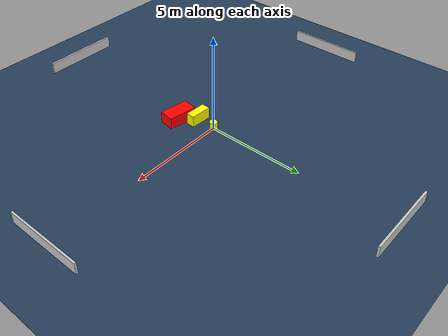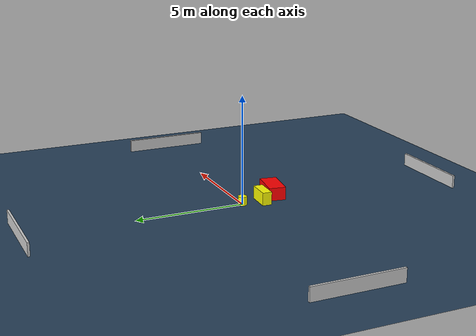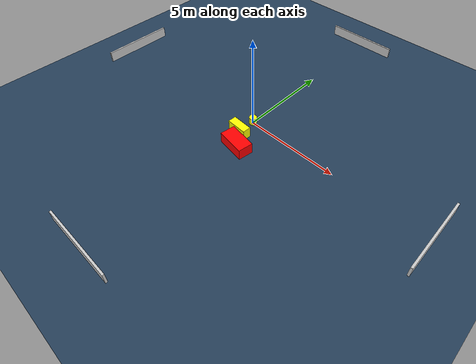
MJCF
<?xml version="1.0" ?>
<mujoco model="generated_environment">
  <option timestep="0.01" integrator="RK4" cone="elliptic"/>
  <default>
    <geom density="1"/>
  </default>
  <asset>
    <texture builtin="gradient" height="3072" name="skybox" rgb1="0.3 0.5 0.7" rgb2="0 0 0" type="skybox" width="512"/>
    <texture builtin="checker" height="300" name="groundplane" rgb1="0.2 0.3 0.4" rgb2="0.1 0.2 0.3" type="2d" width="300"/>
    <material name="groundplane" reflectance="0.2" texrepeat="5 5" texture="groundplane"/>
  </asset>
  <worldbody>
    <light dir="0 0 -1" directional="true" pos="0 0 1.5"/>
    <geom condim="3" friction="0.5 0.005 0.001" material="groundplane" name="floor" pos="0 0 0" size="0 0 0.05" type="plane"/>
    <body name="walls">
      <geom name="wall_1" condim="4" pos="-10.0 0.0 0.3" rgba="0.800000011920929 0.800000011920929 0.800000011920929 1.0" size="0.05 2.0 0.3" type="box"/>
      <geom name="wall_2" condim="4" pos="10.0 0.0 0.3" rgba="0.800000011920929 0.800000011920929 0.800000011920929 1.0" size="0.05 2.0 0.3" type="box"/>
      <geom name="wall_3" condim="4" pos="0.0 -10.0 0.3" rgba="0.800000011920929 0.800000011920929 0.800000011920929 1.0" size="2.0 0.05 0.3" type="box"/>
      <geom name="wall_4" condim="4" pos="0.0 10.0 0.3" rgba="0.800000011920929 0.800000011920929 0.800000011920929 1.0" size="2.0 0.05 0.3" type="box"/>
    </body>
    <body name="robot">
      <joint name="joint_x" type="slide" pos="0 0 0" axis="1 0 0"/>
      <joint name="joint_y" type="slide" pos="0 0 0" axis="0 1 0"/>
      <geom name="robot" type="cylinder" pos="0.0 0.0 0.2" size="0.2 0.2 0.0" mass="5.0" friction="1.0 0.005 0.0001" condim="4" rgba="1.0 1.0 0.0 1.0"/>
    </body>
    <body name="obstacle_1_movable">
      <geom name="obstacle_1_movable" condim="4" pos="0.007259954770065173 -1.000121403421877 0.3" euler="0 0 357.1228013887004" friction="0.0 0.005 0.001" rgba="1.0 1.0 0.0 1.0" size="0.5478011848520122 0.2183691771679489 0.3" type="box" mass="0.1"/>
      <joint type="free"/>
    </body>
    <body name="obstacle_2_static">
      <geom name="obstacle_2_static" condim="4" pos="0.5923660763593263 -1.789445087135803 0.3" euler="0 0 351.23729636463156" friction="0.0 0.005 0.001" rgba="1.0 0.0 0.0 1.0" size="0.7495517915756409 0.39155596379500945 0.3" type="box"/>
    </body>
  </worldbody>
  <actuator>
    <motor name="actuator_x" joint="joint_x" gear="1" ctrlrange="-1 1"/>
    <motor name="actuator_y" joint="joint_y" gear="1" ctrlrange="-1 1"/>
  </actuator>
</mujoco>
